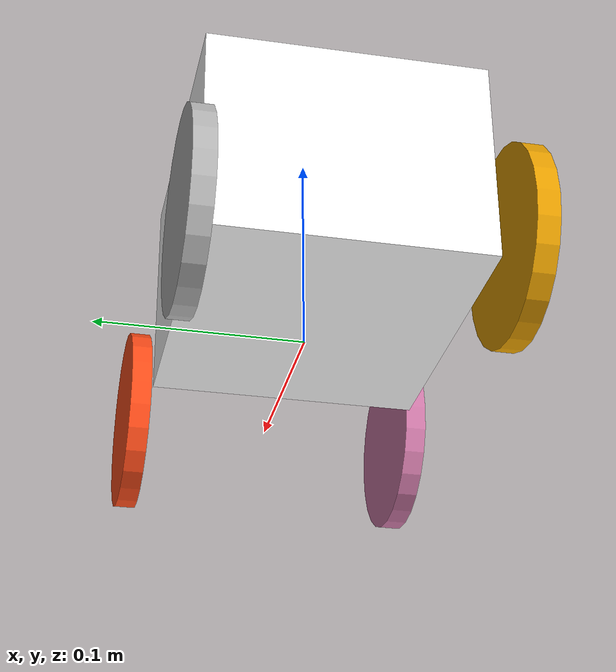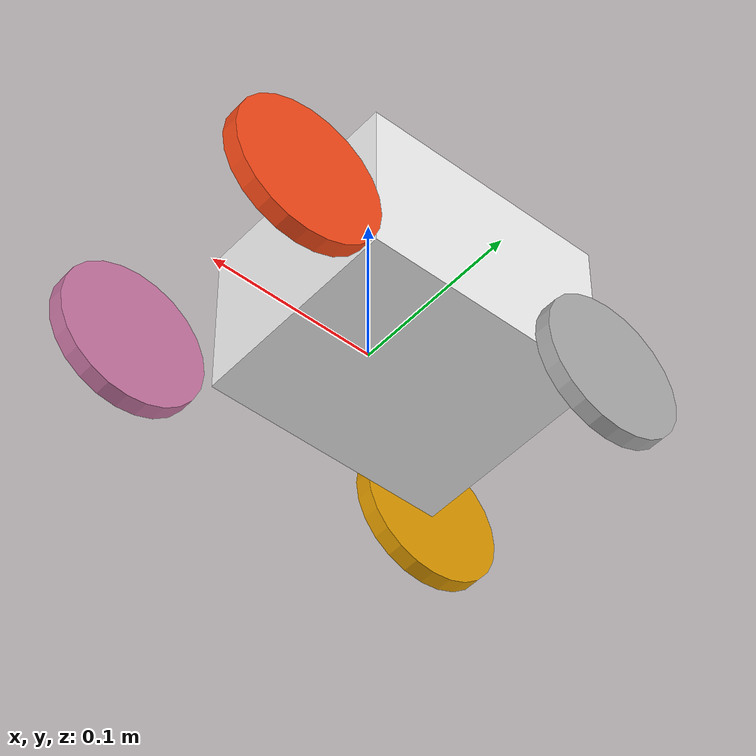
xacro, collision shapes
<?xml version="1.0"?>
<robot xmlns:xacro="http://www.ros.org/wiki/xacro"  name="limo">

    <xacro:property name="description_package" value="lab1_mobile_ackermann"/>

    <xacro:include filename="robot_core.urdf.xacro"/>
    <xacro:include filename="gazebo_control.xacro"/>
    <xacro:include filename="gazebo_sensor.xacro"/>

</robot>

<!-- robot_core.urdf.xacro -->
<robot xmlns:xacro="http://www.ros.org/wiki/xacro" >

    <xacro:include filename="inertial_macros.xacro"/>

    <material name="white">
        <color rgba="1 1 1 1" />
    </material>

    <material name="orange">
        <color rgba="1 0.3 0.1 1"/>
    </material>

    <material name="blue">
        <color rgba="0.2 0.2 1 1"/>
    </material>

    <material name="black">
        <color rgba="0 0 0 1"/>
    </material>

    <!-- BASE LINK -->

    <link name="base_link">

    </link>

    <!-- CHASSIS LINK -->

    <joint name="chassis_joint" type="fixed">
        <parent link="base_link"/>
        <child link="chassis"/>
        <origin xyz="-0.1 0 0"/>
    </joint>

    <link name="chassis">
        <visual>
            <origin xyz="0.1 0 -0.05" rpy="0 0 ${pi/2}"/>
            <geometry>
                <mesh filename="file://$(find ${description_package})/meshes/limo_base.dae"/>
            </geometry>
            <material name="white"/>
        </visual>
        <collision>
            <origin xyz="0.075 0 0.045"/>
            <geometry>
                <box size="0.15 0.13 0.1"/>
            </geometry>
        </collision>
        <xacro:inertial_box mass="5.5" x="0.2" y="0.13" z="0.1">
            <origin xyz="0.1 0 0.045" rpy="0 0 0"/>
        </xacro:inertial_box>
    </link>

    <!-- IMU -->
    <joint name="imu_joint" type="fixed">
        <parent link="base_link"/>
        <child link="imu_link"/>
        <origin xyz="-0.1 0 0" rpy="0 0 0"/>
    </joint>

    <link name="imu_link">
    <inertial>
        <origin xyz="0 0 0" rpy="0 0 0"/>
        <mass value="0.01"/>
        <inertia ixx="1e-5" ixy="0" ixz="0" iyy="1e-5" iyz="0" izz="1e-5"/>
    </inertial>
    </link>

    <!-- FRONT LEFT WHEEL -->
    <joint name="front_left_steering_joint" type="revolute">
        <parent link="base_link"/>
        <child link="front_left_steering"/>
        <origin xyz="0.1 0.07 0"/>
        <axis xyz="0 0 1"/>
        <limit lower="-${pi/4}" upper="${pi/4}" effort="10.0" velocity="3.0"/>
    </joint>

    <joint name="front_left_wheel_joint" type="continuous">
        <parent link="front_left_steering"/>
        <child link="front_left_wheel"/>
        <origin xyz="0 0 0" rpy="-${pi/2} 0 0" />
        <axis xyz="0 0 1"/>
    </joint>

    <link name="front_left_steering">
        <inertial>
            <mass value="0.1"/>
            <inertia ixx="0.01" ixy="0.0" ixz="0.0" iyy="0.01" iyz="0.0" izz="0.01"/>
        </inertial>
    </link>

    <link name="front_left_wheel">
        <visual>
            <origin xyz="0 0 -0.005" rpy="${pi/2} 0 0"/>
            <geometry>
                <mesh filename="file://$(find ${description_package})/meshes/limo_wheel.dae"/>
            </geometry>
            <material name="orange"/>
        </visual>
        <collision>
            <geometry>
                <cylinder radius="0.045" length="0.01"/>
            </geometry>
        </collision>
        <xacro:inertial_cylinder mass="0.1" length="0.01" radius="0.045">
            <origin xyz="0 0 0" rpy="0 0 0"/>
        </xacro:inertial_cylinder>
    </link>

    <!-- FRONT RIGHT WHEEL -->
    <joint name="front_right_steering_joint" type="revolute">
        <parent link="base_link"/>
        <child link="front_right_steering"/>
        <origin xyz="0.1 -0.07 0"/>
        <axis xyz="0 0 1"/>
        <limit lower="-${pi/4}" upper="${pi/4}" effort="10.0" velocity="3.0"/>
    </joint>

    <joint name="front_right_wheel_joint" type="continuous">
        <parent link="front_right_steering"/>
        <child link="front_right_wheel"/>
        <origin xyz="0 0 0" rpy="${pi/2} 0 0" />
        <axis xyz="0 0 -1"/>
    </joint>

    <link name="front_right_steering">
        <inertial>
            <mass value="0.1"/>
            <inertia ixx="0.01" ixy="0.0" ixz="0.0" iyy="0.01" iyz="0.0" izz="0.01"/>
        </inertial>
    </link>

    <link name="front_right_wheel">
        <visual>
            <origin xyz="0 0 -0.005" rpy="${pi/2} 0 0"/>
            <geometry>
                <mesh filename="file://$(find ${description_package})/meshes/limo_wheel.dae" scale="1 1 1"/>
            </geometry>
        </visual>
        <collision>
            <geometry>
                <cylinder radius="0.045" length="0.01"/>
            </geometry>
        </collision>
        <xacro:inertial_cylinder mass="0.1" length="0.01" radius="0.045">
            <origin xyz="0 0 0" rpy="0 0 0"/>
        </xacro:inertial_cylinder>
    </link>

    <!-- REAR LEFT WHEEL -->
    <joint name="rear_left_wheel_joint" type="continuous">
        <parent link="base_link"/>
        <child link="rear_left_wheel"/>
        <origin xyz="-0.1 0.07 0" rpy="-${pi/2} 0 0" />
        <axis xyz="0 0 1"/>
    </joint>

    <link name="rear_left_wheel">
        <visual>
            <origin xyz="0 0 -0.005" rpy="${pi/2} 0 0"/>
            <geometry>
                <mesh filename="file://$(find ${description_package})/meshes/limo_wheel.dae" scale="1 1 1"/>
            </geometry>
        </visual>
        <collision>
            <geometry>
                <cylinder radius="0.045" length="0.01"/>
            </geometry>
        </collision>
        <xacro:inertial_cylinder mass="0.1" length="0.01" radius="0.045">
            <origin xyz="0 0 0" rpy="0 0 0"/>
        </xacro:inertial_cylinder>
    </link>

    <!-- REAR RIGHT WHEEL -->
    <joint name="rear_right_wheel_joint" type="continuous">
        <parent link="base_link"/>
        <child link="rear_right_wheel"/>
        <origin xyz="-0.1 -0.07 0" rpy="${pi/2} 0 0"/>
        <axis xyz="0 0 -1"/>
    </joint>

    <link name="rear_right_wheel">
        <visual>
            <origin xyz="0 0 -0.005" rpy="${pi/2} 0 0"/>
            <geometry>
                <mesh filename="file://$(find ${description_package})/meshes/limo_wheel.dae" scale="1 1 1"/>
            </geometry>
        </visual>
        <collision>
            <geometry>
                <cylinder radius="0.045" length="0.01"/>
            </geometry>
        </collision>
        <xacro:inertial_cylinder mass="0.1" length="0.01" radius="0.045">
            <origin xyz="0 0 0" rpy="0 0 0"/>
        </xacro:inertial_cylinder>
    </link>

</robot>
